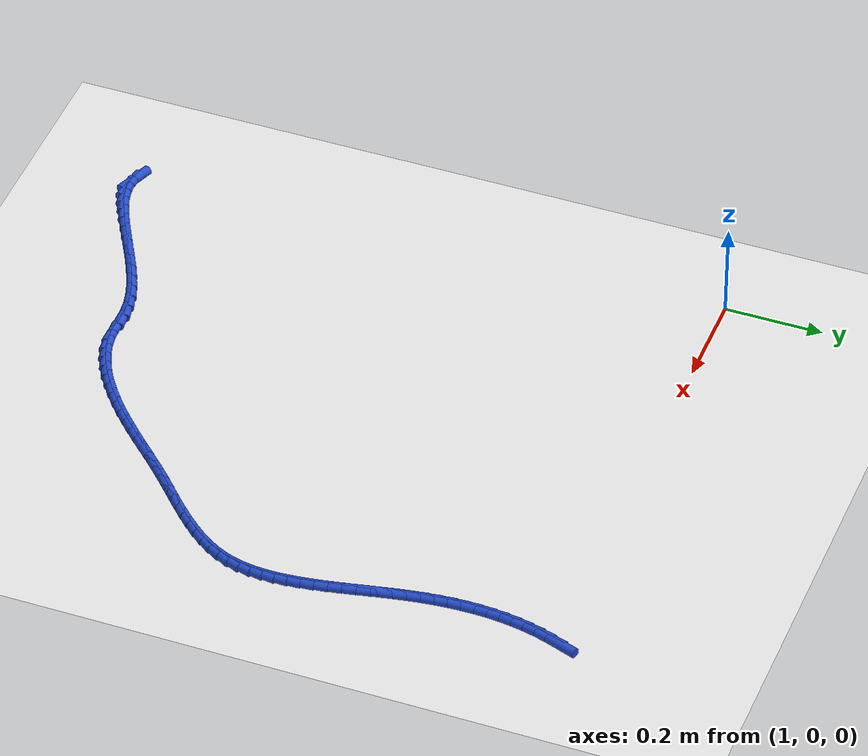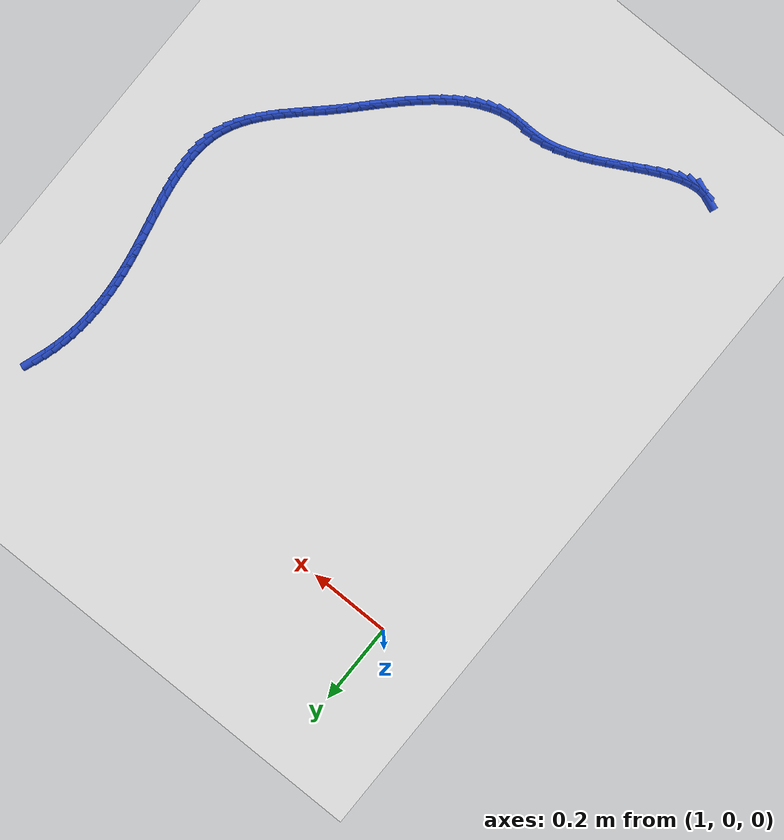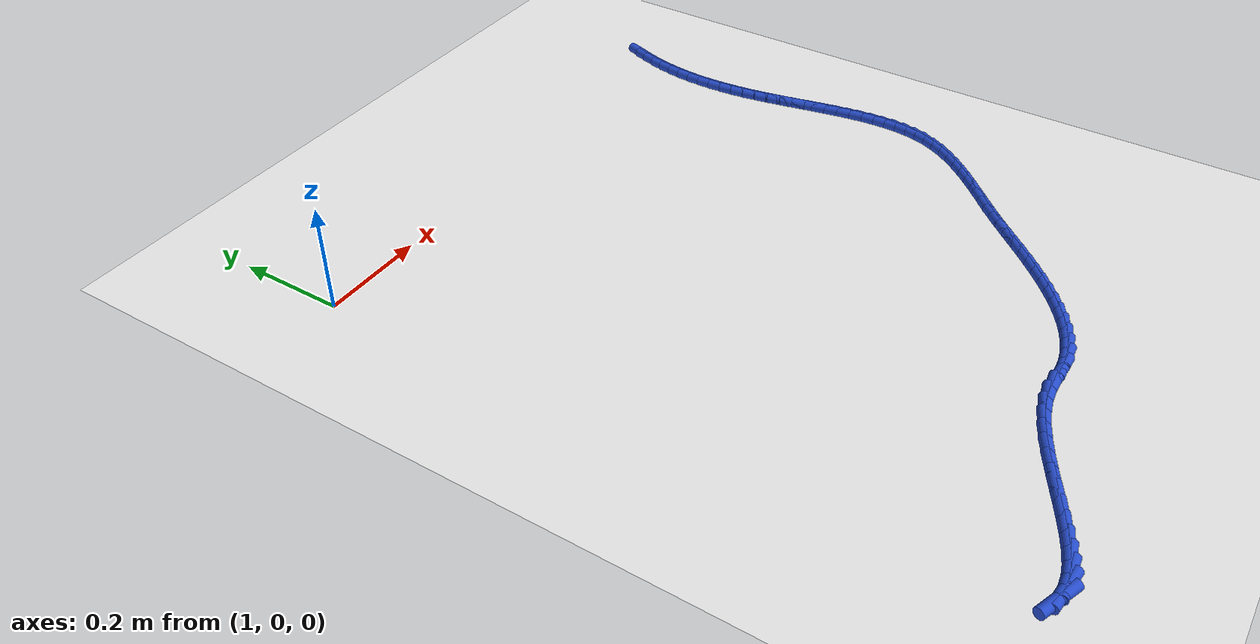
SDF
<sdf version="1.6">
 <world name="default">
  <model name="ground_plane">
   <static>1</static>
   <link name="link">
    <collision name="collision">
     <geometry><plane><normal>0 0 1</normal><size>100 100</size></plane></geometry>
     <surface><friction><ode><mu>100</mu><mu2>50</mu2></ode></friction></surface>
    </collision>
    <visual name="visual">
     <cast_shadows>0</cast_shadows>
     <geometry><plane><normal>0 0 1</normal><size>100 100</size></plane></geometry>
     <material>
      <script><uri>file://media/materials/scripts/gazebo.material</uri><name>Gazebo/WhiteGlow</name></script>
     </material>
    </visual>
   </link>
  </model>
  <model name="line">
   <link name="link_142">
    <pose>1.9998282683012103 0.01645657507076864 0.01 0 1.57 1.237200628110572</pose>
    <collision name="collision">
     <geometry><cylinder><radius>0.01</radius><length>0.08</length></cylinder></geometry>
    </collision>
    <visual name="visual">
     <material>
      <script><name>Gazebo/Blue</name><uri>file://media/materials/scripts/gazebo.material</uri></script>
     </material>
     <geometry><cylinder><radius>0.01</radius><length>0.08</length></cylinder></geometry>
    </visual>
   </link>
   <link name="link_143">
    <pose>1.9912372448906195 -0.008333752273648779 0.01 0 1.57 1.29151683840918</pose>
    <collision name="collision">
     <geometry><cylinder><radius>0.01</radius><length>0.08</length></cylinder></geometry>
    </collision>
    <visual name="visual">
     <material>
      <script><name>Gazebo/Blue</name><uri>file://media/materials/scripts/gazebo.material</uri></script>
     </material>
     <geometry><cylinder><radius>0.01</radius><length>0.08</length></cylinder></geometry>
    </visual>
   </link>
   <link name="link_144">
    <pose>1.9840962184368494 -0.03323495160125205 0.01 0 1.57 1.344844361686274</pose>
    <collision name="collision">
     <geometry><cylinder><radius>0.01</radius><length>0.08</length></cylinder></geometry>
    </collision>
    <visual name="visual">
     <material>
      <script><name>Gazebo/Blue</name><uri>file://media/materials/scripts/gazebo.material</uri></script>
     </material>
     <geometry><cylinder><radius>0.01</radius><length>0.08</length></cylinder></geometry>
    </visual>
   </link>
   <link name="link_145">
    <pose>1.9783447138594803 -0.05825482757119308 0.01 0 1.57 1.3967078744045431</pose>
    <collision name="collision">
     <geometry><cylinder><radius>0.01</radius><length>0.08</length></cylinder></geometry>
    </collision>
    <visual name="visual">
     <material>
      <script><name>Gazebo/Blue</name><uri>file://media/materials/scripts/gazebo.material</uri></script>
     </material>
     <geometry><cylinder><radius>0.01</radius><length>0.08</length></cylinder></geometry>
    </visual>
   </link>
   <link name="link_146">
    <pose>1.9739222560780925 -0.08340118484262467 0.01 0 1.57 1.4466825929007705</pose>
    <collision name="collision">
     <geometry><cylinder><radius>0.01</radius><length>0.08</length></cylinder></geometry>
    </collision>
    <visual name="visual">
     <material>
      <script><name>Gazebo/Blue</name><uri>file://media/materials/scripts/gazebo.material</uri></script>
     </material>
     <geometry><cylinder><radius>0.01</radius><length>0.08</length></cylinder></geometry>
    </visual>
   </link>
   <link name="link_147">
    <pose>1.9707683700122651 -0.10868182807469712 0.01 0 1.57 1.4944078753545649</pose>
    <collision name="collision">
     <geometry><cylinder><radius>0.01</radius><length>0.08</length></cylinder></geometry>
    </collision>
    <visual name="visual">
     <material>
      <script><name>Gazebo/Blue</name><uri>file://media/materials/scripts/gazebo.material</uri></script>
     </material>
     <geometry><cylinder><radius>0.01</radius><length>0.08</length></cylinder></geometry>
    </visual>
   </link>
   <link name="link_148">
    <pose>1.968822580581578 -0.13410456192656323 0.01 0 1.57 1.539594652623422</pose>
    <collision name="collision">
     <geometry><cylinder><radius>0.01</radius><length>0.08</length></cylinder></geometry>
    </collision>
    <visual name="visual">
     <material>
      <script><name>Gazebo/Blue</name><uri>file://media/materials/scripts/gazebo.material</uri></script>
     </material>
     <geometry><cylinder><radius>0.01</radius><length>0.08</length></cylinder></geometry>
    </visual>
   </link>
   <link name="link_149">
    <pose>1.9680244127056103 -0.15967719105737493 0.01 0 1.57 -1.5595657495165867</pose>
    <collision name="collision">
     <geometry><cylinder><radius>0.01</radius><length>0.08</length></cylinder></geometry>
    </collision>
    <visual name="visual">
     <material>
      <script><name>Gazebo/Blue</name><uri>file://media/materials/scripts/gazebo.material</uri></script>
     </material>
     <geometry><cylinder><radius>0.01</radius><length>0.08</length></cylinder></geometry>
    </visual>
   </link>
   <link name="link_150">
    <pose>1.9683133913039426 -0.18540752012628411 0.01 0 1.57 -1.5200345024927673</pose>
    <collision name="collision">
     <geometry><cylinder><radius>0.01</radius><length>0.08</length></cylinder></geometry>
    </collision>
    <visual name="visual">
     <material>
      <script><name>Gazebo/Blue</name><uri>file://media/materials/scripts/gazebo.material</uri></script>
     </material>
     <geometry><cylinder><radius>0.01</radius><length>0.08</length></cylinder></geometry>
    </visual>
   </link>
   <link name="link_151">
    <pose>1.969629041296154 -0.2113033537924428 0.01 0 1.57 -1.4834883003248043</pose>
    <collision name="collision">
     <geometry><cylinder><radius>0.01</radius><length>0.08</length></cylinder></geometry>
    </collision>
    <visual name="visual">
     <material>
      <script><name>Gazebo/Blue</name><uri>file://media/materials/scripts/gazebo.material</uri></script>
     </material>
     <geometry><cylinder><radius>0.01</radius><length>0.08</length></cylinder></geometry>
    </visual>
   </link>
   <link name="link_152">
    <pose>1.9719108876018245 -0.23737249671500288 0.01 0 1.57 -1.4499579829650397</pose>
    <collision name="collision">
     <geometry><cylinder><radius>0.01</radius><length>0.08</length></cylinder></geometry>
    </collision>
    <visual name="visual">
     <material>
      <script><name>Gazebo/Blue</name><uri>file://media/materials/scripts/gazebo.material</uri></script>
     </material>
     <geometry><cylinder><radius>0.01</radius><length>0.08</length></cylinder></geometry>
    </visual>
   </link>
   <link name="link_153">
    <pose>1.9750984551405335 -0.2636227535531163 0.01 0 1.57 -1.41945796218373</pose>
    <collision name="collision">
     <geometry><cylinder><radius>0.01</radius><length>0.08</length></cylinder></geometry>
    </collision>
    <visual name="visual">
     <material>
      <script><name>Gazebo/Blue</name><uri>file://media/materials/scripts/gazebo.material</uri></script>
     </material>
     <geometry><cylinder><radius>0.01</radius><length>0.08</length></cylinder></geometry>
    </visual>
   </link>
   <link name="link_154">
    <pose>1.9791304960276221 -0.2900615976974473 0.01 0 1.57 -1.3940010346514493</pose>
    <collision name="collision">
     <geometry><cylinder><radius>0.01</radius><length>0.08</length></cylinder></geometry>
    </collision>
    <visual name="visual">
     <material>
      <script><name>Gazebo/Blue</name><uri>file://media/materials/scripts/gazebo.material</uri></script>
     </material>
     <geometry><cylinder><radius>0.01</radius><length>0.08</length></cylinder></geometry>
    </visual>
   </link>
   <link name="link_155">
    <pose>1.9838844057492466 -0.3166702015471017 0.01 0 1.57 -1.3768094076275863</pose>
    <collision name="collision">
     <geometry><cylinder><radius>0.01</radius><length>0.08</length></cylinder></geometry>
    </collision>
    <visual name="visual">
     <material>
      <script><name>Gazebo/Blue</name><uri>file://media/materials/scripts/gazebo.material</uri></script>
     </material>
     <geometry><cylinder><radius>0.01</radius><length>0.08</length></cylinder></geometry>
    </visual>
   </link>
   <link name="link_156">
    <pose>1.9891326811861665 -0.3433847719062383 0.01 0 1.57 -1.3678576463910845</pose>
    <collision name="collision">
     <geometry><cylinder><radius>0.01</radius><length>0.08</length></cylinder></geometry>
    </collision>
    <visual name="visual">
     <material>
      <script><name>Gazebo/Blue</name><uri>file://media/materials/scripts/gazebo.material</uri></script>
     </material>
     <geometry><cylinder><radius>0.01</radius><length>0.08</length></cylinder></geometry>
    </visual>
   </link>
   <link name="link_157">
    <pose>1.9946375449400535 -0.37013711143017297 0.01 0 1.57 -1.366957664858856</pose>
    <collision name="collision">
     <geometry><cylinder><radius>0.01</radius><length>0.08</length></cylinder></geometry>
    </collision>
    <visual name="visual">
     <material>
      <script><name>Gazebo/Blue</name><uri>file://media/materials/scripts/gazebo.material</uri></script>
     </material>
     <geometry><cylinder><radius>0.01</radius><length>0.08</length></cylinder></geometry>
    </visual>
   </link>
   <link name="link_158">
    <pose>2.0001612196125804 -0.39685902277422097 0.01 0 1.57 -1.3741213565888915</pose>
    <collision name="collision">
     <geometry><cylinder><radius>0.01</radius><length>0.08</length></cylinder></geometry>
    </collision>
    <visual name="visual">
     <material>
      <script><name>Gazebo/Blue</name><uri>file://media/materials/scripts/gazebo.material</uri></script>
     </material>
     <geometry><cylinder><radius>0.01</radius><length>0.08</length></cylinder></geometry>
    </visual>
   </link>
   <link name="link_159">
    <pose>2.005465927805418 -0.42348230859369723 0.01 0 1.57 -1.389563851850836</pose>
    <collision name="collision">
     <geometry><cylinder><radius>0.01</radius><length>0.08</length></cylinder></geometry>
    </collision>
    <visual name="visual">
     <material>
      <script><name>Gazebo/Blue</name><uri>file://media/materials/scripts/gazebo.material</uri></script>
     </material>
     <geometry><cylinder><radius>0.01</radius><length>0.08</length></cylinder></geometry>
    </visual>
   </link>
   <link name="link_160">
    <pose>2.0103138921202377 -0.4499387715439167 0.01 0 1.57 -1.4137027612221518</pose>
    <collision name="collision">
     <geometry><cylinder><radius>0.01</radius><length>0.08</length></cylinder></geometry>
    </collision>
    <visual name="visual">
     <material>
      <script><name>Gazebo/Blue</name><uri>file://media/materials/scripts/gazebo.material</uri></script>
     </material>
     <geometry><cylinder><radius>0.01</radius><length>0.08</length></cylinder></geometry>
    </visual>
   </link>
   <link name="link_161">
    <pose>2.0144673351587126 -0.4761602142801945 0.01 0 1.57 -1.4471492792708183</pose>
    <collision name="collision">
     <geometry><cylinder><radius>0.01</radius><length>0.08</length></cylinder></geometry>
    </collision>
    <visual name="visual">
     <material>
      <script><name>Gazebo/Blue</name><uri>file://media/materials/scripts/gazebo.material</uri></script>
     </material>
     <geometry><cylinder><radius>0.01</radius><length>0.08</length></cylinder></geometry>
    </visual>
   </link>
   <link name="link_162">
    <pose>2.017688479522513 -0.5020784394578457 0.01 0 1.57 -1.4906815019729382</pose>
    <collision name="collision">
     <geometry><cylinder><radius>0.01</radius><length>0.08</length></cylinder></geometry>
    </collision>
    <visual name="visual">
     <material>
      <script><name>Gazebo/Blue</name><uri>file://media/materials/scripts/gazebo.material</uri></script>
     </material>
     <geometry><cylinder><radius>0.01</radius><length>0.08</length></cylinder></geometry>
    </visual>
   </link>
   <link name="link_163">
    <pose>2.01973954781331 -0.5276252497321854 0.01 0 1.57 -1.5451831876486384</pose>
    <collision name="collision">
     <geometry><cylinder><radius>0.01</radius><length>0.08</length></cylinder></geometry>
    </collision>
    <visual name="visual">
     <material>
      <script><name>Gazebo/Blue</name><uri>file://media/materials/scripts/gazebo.material</uri></script>
     </material>
     <geometry><cylinder><radius>0.01</radius><length>0.08</length></cylinder></geometry>
    </visual>
   </link>
   <link name="link_164">
    <pose>2.0203827626327775 -0.5527324477585294 0.01 0 1.57 1.5300692267341904</pose>
    <collision name="collision">
     <geometry><cylinder><radius>0.01</radius><length>0.08</length></cylinder></geometry>
    </collision>
    <visual name="visual">
     <material>
      <script><name>Gazebo/Blue</name><uri>file://media/materials/scripts/gazebo.material</uri></script>
     </material>
     <geometry><cylinder><radius>0.01</radius><length>0.08</length></cylinder></geometry>
    </visual>
   </link>
   <link name="link_165">
    <pose>2.019380346582586 -0.5773318361921912 0.01 0 1.57 1.4512435362630778</pose>
    <collision name="collision">
     <geometry><cylinder><radius>0.01</radius><length>0.08</length></cylinder></geometry>
    </collision>
    <visual name="visual">
     <material>
      <script><name>Gazebo/Blue</name><uri>file://media/materials/scripts/gazebo.material</uri></script>
     </material>
     <geometry><cylinder><radius>0.01</radius><length>0.08</length></cylinder></geometry>
    </visual>
   </link>
   <link name="link_166">
    <pose>2.016494522264407 -0.6013552176884864 0.01 0 1.57 1.3598180635803176</pose>
    <collision name="collision">
     <geometry><cylinder><radius>0.01</radius><length>0.08</length></cylinder></geometry>
    </collision>
    <visual name="visual">
     <material>
      <script><name>Gazebo/Blue</name><uri>file://media/materials/scripts/gazebo.material</uri></script>
     </material>
     <geometry><cylinder><radius>0.01</radius><length>0.08</length></cylinder></geometry>
    </visual>
   </link>
   <link name="link_167">
    <pose>2.0114875122799116 -0.6247343949027302 0.01 0 1.57 1.2565935177324494</pose>
    <collision name="collision">
     <geometry><cylinder><radius>0.01</radius><length>0.08</length></cylinder></geometry>
    </collision>
    <visual name="visual">
     <material>
      <script><name>Gazebo/Blue</name><uri>file://media/materials/scripts/gazebo.material</uri></script>
     </material>
     <geometry><cylinder><radius>0.01</radius><length>0.08</length></cylinder></geometry>
    </visual>
   </link>
   <link name="link_168">
    <pose>2.004121539230773 -0.6474011704902379 0.01 0 1.57 1.1468241488771487</pose>
    <collision name="collision">
     <geometry><cylinder><radius>0.01</radius><length>0.08</length></cylinder></geometry>
    </collision>
    <visual name="visual">
     <material>
      <script><name>Gazebo/Blue</name><uri>file://media/materials/scripts/gazebo.material</uri></script>
     </material>
     <geometry><cylinder><radius>0.01</radius><length>0.08</length></cylinder></geometry>
    </visual>
   </link>
   <link name="link_169">
    <pose>1.9942345033756332 -0.669306869308201 0.01 0 1.57 1.0485397919357304</pose>
    <collision name="collision">
     <geometry><cylinder><radius>0.01</radius><length>0.08</length></cylinder></geometry>
    </collision>
    <visual name="visual">
     <material>
      <script><name>Gazebo/Blue</name><uri>file://media/materials/scripts/gazebo.material</uri></script>
     </material>
     <geometry><cylinder><radius>0.01</radius><length>0.08</length></cylinder></geometry>
    </visual>
   </link>
   <link name="link_170">
    <pose>1.9820371237376937 -0.6904989904807813 0.01 0 1.57 0.9668455179788238</pose>
    <collision name="collision">
     <geometry><cylinder><radius>0.01</radius><length>0.08</length></cylinder></geometry>
    </collision>
    <visual name="visual">
     <material>
      <script><name>Gazebo/Blue</name><uri>file://media/materials/scripts/gazebo.material</uri></script>
     </material>
     <geometry><cylinder><radius>0.01</radius><length>0.08</length></cylinder></geometry>
    </visual>
   </link>
   <link name="link_171">
    <pose>1.9678547301174383 -0.7110545987241644 0.01 0 1.57 0.9007963573424604</pose>
    <collision name="collision">
     <geometry><cylinder><radius>0.01</radius><length>0.08</length></cylinder></geometry>
    </collision>
    <visual name="visual">
     <material>
      <script><name>Gazebo/Blue</name><uri>file://media/materials/scripts/gazebo.material</uri></script>
     </material>
     <geometry><cylinder><radius>0.01</radius><length>0.08</length></cylinder></geometry>
    </visual>
   </link>
   <link name="link_172">
    <pose>1.9520126834798606 -0.7310507667938954 0.01 0 1.57 0.8490203601301343</pose>
    <collision name="collision">
     <geometry><cylinder><radius>0.01</radius><length>0.08</length></cylinder></geometry>
    </collision>
    <visual name="visual">
     <material>
      <script><name>Gazebo/Blue</name><uri>file://media/materials/scripts/gazebo.material</uri></script>
     </material>
     <geometry><cylinder><radius>0.01</radius><length>0.08</length></cylinder></geometry>
    </visual>
   </link>
   <link name="link_173">
    <pose>1.9348363447899528 -0.7505645674455191 0.01 0 1.57 0.8101488801307442</pose>
    <collision name="collision">
     <geometry><cylinder><radius>0.01</radius><length>0.08</length></cylinder></geometry>
    </collision>
    <visual name="visual">
     <material>
      <script><name>Gazebo/Blue</name><uri>file://media/materials/scripts/gazebo.material</uri></script>
     </material>
     <geometry><cylinder><radius>0.01</radius><length>0.08</length></cylinder></geometry>
    </visual>
   </link>
   <link name="link_174">
    <pose>1.916651075012711 -0.7696730734345799 0.01 0 1.57 0.7830460328598969</pose>
    <collision name="collision">
     <geometry><cylinder><radius>0.01</radius><length>0.08</length></cylinder></geometry>
    </collision>
    <visual name="visual">
     <material>
      <script><name>Gazebo/Blue</name><uri>file://media/materials/scripts/gazebo.material</uri></script>
     </material>
     <geometry><cylinder><radius>0.01</radius><length>0.08</length></cylinder></geometry>
    </visual>
   </link>
   <link name="link_175">
    <pose>1.8977822351131268 -0.7884533575166226 0.01 0 1.57 0.7669155049377631</pose>
    <collision name="collision">
     <geometry><cylinder><radius>0.01</radius><length>0.08</length></cylinder></geometry>
    </collision>
    <visual name="visual">
     <material>
      <script><name>Gazebo/Blue</name><uri>file://media/materials/scripts/gazebo.material</uri></script>
     </material>
     <geometry><cylinder><radius>0.01</radius><length>0.08</length></cylinder></geometry>
    </visual>
   </link>
   <link name="link_176">
    <pose>1.8785551860561946 -0.8069824924471921 0.01 0 1.57 0.7613475105140004</pose>
    <collision name="collision">
     <geometry><cylinder><radius>0.01</radius><length>0.08</length></cylinder></geometry>
    </collision>
    <visual name="visual">
     <material>
      <script><name>Gazebo/Blue</name><uri>file://media/materials/scripts/gazebo.material</uri></script>
     </material>
     <geometry><cylinder><radius>0.01</radius><length>0.08</length></cylinder></geometry>
    </visual>
   </link>
   <link name="link_177">
    <pose>1.8592952888069092 -0.8253375509818339 0.01 0 1.57 0.7663455004207312</pose>
    <collision name="collision">
     <geometry><cylinder><radius>0.01</radius><length>0.08</length></cylinder></geometry>
    </collision>
    <visual name="visual">
     <material>
      <script><name>Gazebo/Blue</name><uri>file://media/materials/scripts/gazebo.material</uri></script>
     </material>
     <geometry><cylinder><radius>0.01</radius><length>0.08</length></cylinder></geometry>
    </visual>
   </link>
   <link name="link_178">
    <pose>1.8403279043302625 -0.8435956058760921 0.01 0 1.57 0.7817160177294011</pose>
    <collision name="collision">
     <geometry><cylinder><radius>0.01</radius><length>0.08</length></cylinder></geometry>
    </collision>
    <visual name="visual">
     <material>
      <script><name>Gazebo/Blue</name><uri>file://media/materials/scripts/gazebo.material</uri></script>
     </material>
     <geometry><cylinder><radius>0.01</radius><length>0.08</length></cylinder></geometry>
    </visual>
   </link>
   <link name="link_179">
    <pose>1.8219565580909767 -0.8618321558995393 0.01 0 1.57 0.7980955395276089</pose>
    <collision name="collision">
     <geometry><cylinder><radius>0.01</radius><length>0.08</length></cylinder></geometry>
    </collision>
    <visual name="visual">
     <material>
      <script><name>Gazebo/Blue</name><uri>file://media/materials/scripts/gazebo.material</uri></script>
     </material>
     <geometry><cylinder><radius>0.01</radius><length>0.08</length></cylinder></geometry>
    </visual>
   </link>
   <link name="link_180">
    <pose>1.8041483418174364 -0.8800984483974555 0.01 0 1.57 0.8073127737705013</pose>
    <collision name="collision">
     <geometry><cylinder><radius>0.01</radius><length>0.08</length></cylinder></geometry>
    </collision>
    <visual name="visual">
     <material>
      <script><name>Gazebo/Blue</name><uri>file://media/materials/scripts/gazebo.material</uri></script>
     </material>
     <geometry><cylinder><radius>0.01</radius><length>0.08</length></cylinder></geometry>
    </visual>
   </link>
   <link name="link_181">
    <pose>1.7866063021378105 -0.898426697339257 0.01 0 1.57 0.8087816354832577</pose>
    <collision name="collision">
     <geometry><cylinder><radius>0.01</radius><length>0.08</length></cylinder></geometry>
    </collision>
    <visual name="visual">
     <material>
      <script><name>Gazebo/Blue</name><uri>file://media/materials/scripts/gazebo.material</uri></script>
     </material>
     <geometry><cylinder><radius>0.01</radius><length>0.08</length></cylinder></geometry>
    </visual>
   </link>
   <link name="link_182">
    <pose>1.769026394836576 -0.916848605559354 0.01 0 1.57 0.8025466552664611</pose>
    <collision name="collision">
     <geometry><cylinder><radius>0.01</radius><length>0.08</length></cylinder></geometry>
    </collision>
    <visual name="visual">
     <material>
      <script><name>Gazebo/Blue</name><uri>file://media/materials/scripts/gazebo.material</uri></script>
     </material>
     <geometry><cylinder><radius>0.01</radius><length>0.08</length></cylinder></geometry>
    </visual>
   </link>
   <link name="link_183">
    <pose>1.7511045756982113 -0.9353958758921596 0.01 0 1.57 0.7890737949161379</pose>
    <collision name="collision">
     <geometry><cylinder><radius>0.01</radius><length>0.08</length></cylinder></geometry>
    </collision>
    <visual name="visual">
     <material>
      <script><name>Gazebo/Blue</name><uri>file://media/materials/scripts/gazebo.material</uri></script>
     </material>
     <geometry><cylinder><radius>0.01</radius><length>0.08</length></cylinder></geometry>
    </visual>
   </link>
   <link name="link_184">
    <pose>1.7325619352048278 -0.9540753317120817 0.01 0 1.57 0.7689730630234952</pose>
    <collision name="collision">
     <geometry><cylinder><radius>0.01</radius><length>0.08</length></cylinder></geometry>
    </collision>
    <visual name="visual">
     <material>
      <script><name>Gazebo/Blue</name><uri>file://media/materials/scripts/gazebo.material</uri></script>
     </material>
     <geometry><cylinder><radius>0.01</radius><length>0.08</length></cylinder></geometry>
    </visual>
   </link>
   <link name="link_185">
    <pose>1.7133231852927284 -0.9726922426728982 0.01 0 1.57 0.7422139428630484</pose>
    <collision name="collision">
     <geometry><cylinder><radius>0.01</radius><length>0.08</length></cylinder></geometry>
    </collision>
    <visual name="visual">
     <material>
      <script><name>Gazebo/Blue</name><uri>file://media/materials/scripts/gazebo.material</uri></script>
     </material>
     <geometry><cylinder><radius>0.01</radius><length>0.08</length></cylinder></geometry>
    </visual>
   </link>
   <link name="link_186">
    <pose>1.6934117911915023 -0.9909541279542754 0.01 0 1.57 0.7083723017922654</pose>
    <collision name="collision">
     <geometry><cylinder><radius>0.01</radius><length>0.08</length></cylinder></geometry>
    </collision>
    <visual name="visual">
     <material>
      <script><name>Gazebo/Blue</name><uri>file://media/materials/scripts/gazebo.material</uri></script>
     </material>
     <geometry><cylinder><radius>0.01</radius><length>0.08</length></cylinder></geometry>
    </visual>
   </link>
   <link name="link_187">
    <pose>1.6728518689716383 -1.0085678625041323 0.01 0 1.57 0.6667749949687978</pose>
    <collision name="collision">
     <geometry><cylinder><radius>0.01</radius><length>0.08</length></cylinder></geometry>
    </collision>
    <visual name="visual">
     <material>
      <script><name>Gazebo/Blue</name><uri>file://media/materials/scripts/gazebo.material</uri></script>
     </material>
     <geometry><cylinder><radius>0.01</radius><length>0.08</length></cylinder></geometry>
    </visual>
   </link>
   <link name="link_188">
    <pose>1.6516675347036256 -1.0252403212703887 0.01 0 1.57 0.6165193759845621</pose>
    <collision name="collision">
     <geometry><cylinder><radius>0.01</radius><length>0.08</length></cylinder></geometry>
    </collision>
    <visual name="visual">
     <material>
      <script><name>Gazebo/Blue</name><uri>file://media/materials/scripts/gazebo.material</uri></script>
     </material>
     <geometry><cylinder><radius>0.01</radius><length>0.08</length></cylinder></geometry>
    </visual>
   </link>
   <link name="link_189">
    <pose>1.6298829044579544 -1.0406783792009642 0.01 0 1.57 0.5565070779439927</pose>
    <collision name="collision">
     <geometry><cylinder><radius>0.01</radius><length>0.08</length></cylinder></geometry>
    </collision>
    <visual name="visual">
     <material>
      <script><name>Gazebo/Blue</name><uri>file://media/materials/scripts/gazebo.material</uri></script>
     </material>
     <geometry><cylinder><radius>0.01</radius><length>0.08</length></cylinder></geometry>
    </visual>
   </link>
   <link name="link_190">
    <pose>1.607522094305113 -1.0545889112437787 0.01 0 1.57 0.4855188417644451</pose>
    <collision name="collision">
     <geometry><cylinder><radius>0.01</radius><length>0.08</length></cylinder></geometry>
    </collision>
    <visual name="visual">
     <material>
      <script><name>Gazebo/Blue</name><uri>file://media/materials/scripts/gazebo.material</uri></script>
     </material>
     <geometry><cylinder><radius>0.01</radius><length>0.08</length></cylinder></geometry>
    </visual>
   </link>
   <link name="link_191">
    <pose>1.5846092203155915 -1.06667879234675 0.01 0 1.57 0.4023675958710704</pose>
    <collision name="collision">
     <geometry><cylinder><radius>0.01</radius><length>0.08</length></cylinder></geometry>
    </collision>
    <visual name="visual">
     <material>
      <script><name>Gazebo/Blue</name><uri>file://media/materials/scripts/gazebo.material</uri></script>
     </material>
     <geometry><cylinder><radius>0.01</radius><length>0.08</length></cylinder></geometry>
    </visual>
   </link>
   <link name="link_192">
    <pose>1.56116839855988 -1.0766548974577994 0.01 0 1.57 0.30617257092541106</pose>
    <collision name="collision">
     <geometry><cylinder><radius>0.01</radius><length>0.08</length></cylinder></geometry>
    </collision>
    <visual name="visual">
     <material>
      <script><name>Gazebo/Blue</name><uri>file://media/materials/scripts/gazebo.material</uri></script>
     </material>
     <geometry><cylinder><radius>0.01</radius><length>0.08</length></cylinder></geometry>
    </visual>
   </link>
   <link name="link_193">
    <pose>1.537223745108467 -1.0842241015248453 0.01 0 1.57 0.19677756961915183</pose>
    <collision name="collision">
     <geometry><cylinder><radius>0.01</radius><length>0.08</length></cylinder></geometry>
    </collision>
    <visual name="visual">
     <material>
      <script><name>Gazebo/Blue</name><uri>file://media/materials/scripts/gazebo.material</uri></script>
     </material>
     <geometry><cylinder><radius>0.01</radius><length>0.08</length></cylinder></geometry>
    </visual>
   </link>
   <link name="link_194">
    <pose>1.5127993760318421 -1.0890932794958075 0.01 0 1.57 0.07612182619258354</pose>
    <collision name="collision">
     <geometry><cylinder><radius>0.01</radius><length>0.08</length></cylinder></geometry>
    </collision>
    <visual name="visual">
     <material>
      <script><name>Gazebo/Blue</name><uri>file://media/materials/scripts/gazebo.material</uri></script>
     </material>
     <geometry><cylinder><radius>0.01</radius><length>0.08</length></cylinder></geometry>
    </visual>
   </link>
   <link name="link_195">
    <pose>1.487918733530502 -1.090990906142922 0.01 0 1.57 -0.007842670486707077</pose>
    <collision name="collision">
     <geometry><cylinder><radius>0.01</radius><length>0.08</length></cylinder></geometry>
    </collision>
    <visual name="visual">
     <material>
      <script><name>Gazebo/Blue</name><uri>file://media/materials/scripts/gazebo.material</uri></script>
     </material>
     <geometry><cylinder><radius>0.01</radius><length>0.08</length></cylinder></geometry>
    </visual>
   </link>
   <link name="link_196">
    <pose>1.462569486999365 -1.0907920962791773 0.01 0 1.57 0.010671537683756243</pose>
    <collision name="collision">
     <geometry><cylinder><radius>0.01</radius><length>0.08</length></cylinder></geometry>
    </collision>
    <visual name="visual">
     <material>
      <script><name>Gazebo/Blue</name><uri>file://media/materials/scripts/gazebo.material</uri></script>
     </material>
     <geometry><cylinder><radius>0.01</radius><length>0.08</length></cylinder></geometry>
    </visual>
   </link>
   <link name="link_197">
    <pose>1.436686383067763 -1.0910683192838189 0.01 0 1.57 0.12037777422026696</pose>
    <collision name="collision">
     <geometry><cylinder><radius>0.01</radius><length>0.08</length></cylinder></geometry>
    </collision>
    <visual name="visual">
     <material>
      <script><name>Gazebo/Blue</name><uri>file://media/materials/scripts/gazebo.material</uri></script>
     </material>
     <geometry><cylinder><radius>0.01</radius><length>0.08</length></cylinder></geometry>
    </visual>
   </link>
   <link name="link_198">
    <pose>1.4102176165272513 -1.0942700506727145 0.01 0 1.57 0.23774006038134682</pose>
    <collision name="collision">
     <geometry><cylinder><radius>0.01</radius><length>0.08</length></cylinder></geometry>
    </collision>
    <visual name="visual">
     <material>
      <script><name>Gazebo/Blue</name><uri>file://media/materials/scripts/gazebo.material</uri></script>
     </material>
     <geometry><cylinder><radius>0.01</radius><length>0.08</length></cylinder></geometry>
    </visual>
   </link>
   <link name="link_199">
    <pose>1.3832517830745692 -1.1008044854196508 0.01 0 1.57 0.32830387042020664</pose>
    <collision name="collision">
     <geometry><cylinder><radius>0.01</radius><length>0.08</length></cylinder></geometry>
    </collision>
    <visual name="visual">
     <material>
      <script><name>Gazebo/Blue</name><uri>file://media/materials/scripts/gazebo.material</uri></script>
     </material>
     <geometry><cylinder><radius>0.01</radius><length>0.08</length></cylinder></geometry>
    </visual>
   </link>
   <link name="link_200">
    <pose>1.355944306687592 -1.1101062540671027 0.01 0 1.57 0.39609990148393137</pose>
    <collision name="collision">
     <geometry><cylinder><radius>0.01</radius><length>0.08</length></cylinder></geometry>
    </collision>
    <visual name="visual">
     <material>
      <script><name>Gazebo/Blue</name><uri>file://media/materials/scripts/gazebo.material</uri></script>
     </material>
     <geometry><cylinder><radius>0.01</radius><length>0.08</length></cylinder></geometry>
    </visual>
   </link>
   <link name="link_201">
    <pose>1.3284510197841717 -1.1216040430543994 0.01 0 1.57 0.44489827726083253</pose>
    <collision name="collision">
     <geometry><cylinder><radius>0.01</radius><length>0.08</length></cylinder></geometry>
    </collision>
    <visual name="visual">
     <material>
      <script><name>Gazebo/Blue</name><uri>file://media/materials/scripts/gazebo.material</uri></script>
     </material>
     <geometry><cylinder><radius>0.01</radius><length>0.08</length></cylinder></geometry>
    </visual>
   </link>
   <link name="link_202">
    <pose>1.3009277547821623 -1.1347265388208707 0.01 0 1.57 0.4774840096745803</pose>
    <collision name="collision">
     <geometry><cylinder><radius>0.01</radius><length>0.08</length></cylinder></geometry>
    </collision>
    <visual name="visual">
     <material>
      <script><name>Gazebo/Blue</name><uri>file://media/materials/scripts/gazebo.material</uri></script>
     </material>
     <geometry><cylinder><radius>0.01</radius><length>0.08</length></cylinder></geometry>
    </visual>
   </link>
   <link name="link_203">
    <pose>1.2735303440994161 -1.148902427805845 0.01 0 1.57 0.4955750921123247</pose>
    <collision name="collision">
     <geometry><cylinder><radius>0.01</radius><length>0.08</length></cylinder></geometry>
    </collision>
    <visual name="visual">
     <material>
      <script><name>Gazebo/Blue</name><uri>file://media/materials/scripts/gazebo.material</uri></script>
     </material>
     <geometry><cylinder><radius>0.01</radius><length>0.08</length></cylinder></geometry>
    </visual>
   </link>
   <link name="link_204">
    <pose>1.2464146201537871 -1.163560396448652 0.01 0 1.57 0.4998373144681659</pose>
    <collision name="collision">
     <geometry><cylinder><radius>0.01</radius><length>0.08</length></cylinder></geometry>
    </collision>
    <visual name="visual">
     <material>
      <script><name>Gazebo/Blue</name><uri>file://media/materials/scripts/gazebo.material</uri></script>
     </material>
     <geometry><cylinder><radius>0.01</radius><length>0.08</length></cylinder></geometry>
    </visual>
   </link>
   <link name="link_205">
    <pose>1.219736415363128 -1.178129131188621 0.01 0 1.57 0.48984585893679805</pose>
    <collision name="collision">
     <geometry><cylinder><radius>0.01</radius><length>0.08</length></cylinder></geometry>
    </collision>
    <visual name="visual">
     <material>
      <script><name>Gazebo/Blue</name><uri>file://media/materials/scripts/gazebo.material</uri></script>
     </material>
     <geometry><cylinder><radius>0.01</radius><length>0.08</length></cylinder></geometry>
    </visual>
   </link>
   <link name="link_206">
    <pose>1.193651562145292 -1.1920373184650805 0.01 0 1.57 0.46391570533982934</pose>
    <collision name="collision">
     <geometry><cylinder><radius>0.01</radius><length>0.08</length></cylinder></geometry>
    </collision>
    <visual name="visual">
     <material>
      <script><name>Gazebo/Blue</name><uri>file://media/materials/scripts/gazebo.material</uri></script>
     </material>
     <geometry><cylinder><radius>0.01</radius><length>0.08</length></cylinder></geometry>
    </visual>
   </link>
   <link name="link_207">
    <pose>1.168315892918133 -1.2047136447173603 0.01 0 1.57 0.4187397812356687</pose>
    <collision name="collision">
     <geometry><cylinder><radius>0.01</radius><length>0.08</length></cylinder></geometry>
    </collision>
    <visual name="visual">
     <material>
      <script><name>Gazebo/Blue</name><uri>file://media/materials/scripts/gazebo.material</uri></script>
     </material>
     <geometry><cylinder><radius>0.01</radius><length>0.08</length></cylinder></geometry>
    </visual>
   </link>
   <link name="link_208">
    <pose>1.1438852400995025 -1.2155867963847897 0.01 0 1.57 0.3487919020920978</pose>
    <collision name="collision">
     <geometry><cylinder><radius>0.01</radius><length>0.08</length></cylinder></geometry>
    </collision>
    <visual name="visual">
     <material>
      <script><name>Gazebo/Blue</name><uri>file://media/materials/scripts/gazebo.material</uri></script>
     </material>
     <geometry><cylinder><radius>0.01</radius><length>0.08</length></cylinder></geometry>
    </visual>
   </link>
   <link name="link_209">
    <pose>1.1205154361072567 -1.2240854599066973 0.01 0 1.57 0.24559804706850633</pose>
    <collision name="collision">
     <geometry><cylinder><radius>0.01</radius><length>0.08</length></cylinder></geometry>
    </collision>
    <visual name="visual">
     <material>
      <script><name>Gazebo/Blue</name><uri>file://media/materials/scripts/gazebo.material</uri></script>
     </material>
     <geometry><cylinder><radius>0.01</radius><length>0.08</length></cylinder></geometry>
    </visual>
   </link>
   <link name="link_210">
    <pose>1.098362313359246 -1.2296383217224116 0.01 0 1.57 0.09765216698427878</pose>
    <collision name="collision">
     <geometry><cylinder><radius>0.01</radius><length>0.08</length></cylinder></geometry>
    </collision>
    <visual name="visual">
     <material>
      <script><name>Gazebo/Blue</name><uri>file://media/materials/scripts/gazebo.material</uri></script>
     </material>
     <geometry><cylinder><radius>0.01</radius><length>0.08</length></cylinder></geometry>
    </visual>
   </link>
   <link name="link_211">
    <pose>1.0775817042733253 -1.2316740682712635 0.01 0 1.57 -0.10621902898096275</pose>
    <collision name="collision">
     <geometry><cylinder><radius>0.01</radius><length>0.08</length></cylinder></geometry>
    </collision>
    <visual name="visual">
     <material>
      <script><name>Gazebo/Blue</name><uri>file://media/materials/scripts/gazebo.material</uri></script>
     </material>
     <geometry><cylinder><radius>0.01</radius><length>0.08</length></cylinder></geometry>
    </visual>
   </link>
   <link name="link_212">
    <pose>1.058329441267347 -1.2296213859925804 0.01 0 1.57 -0.3649638431009187</pose>
    <collision name="collision">
     <geometry><cylinder><radius>0.01</radius><length>0.08</length></cylinder></geometry>
    </collision>
    <visual name="visual">
     <material>
      <script><name>Gazebo/Blue</name><uri>file://media/materials/scripts/gazebo.material</uri></script>
     </material>
     <geometry><cylinder><radius>0.01</radius><length>0.08</length></cylinder></geometry>
    </visual>
   </link>
  </model>
 </world>
</sdf>
